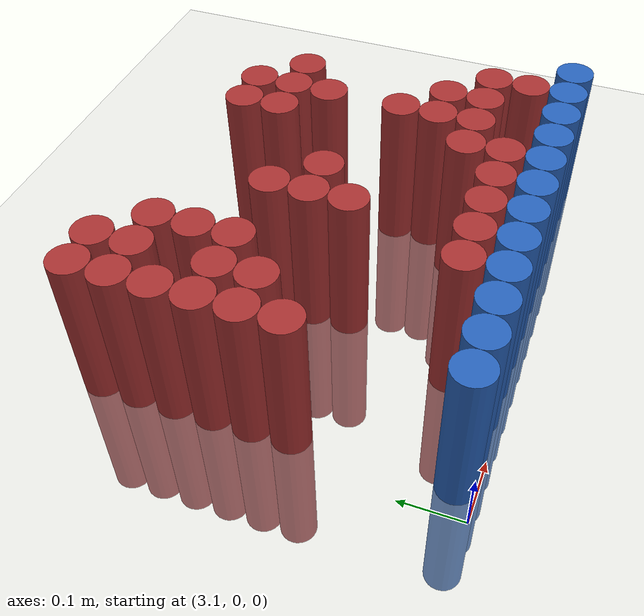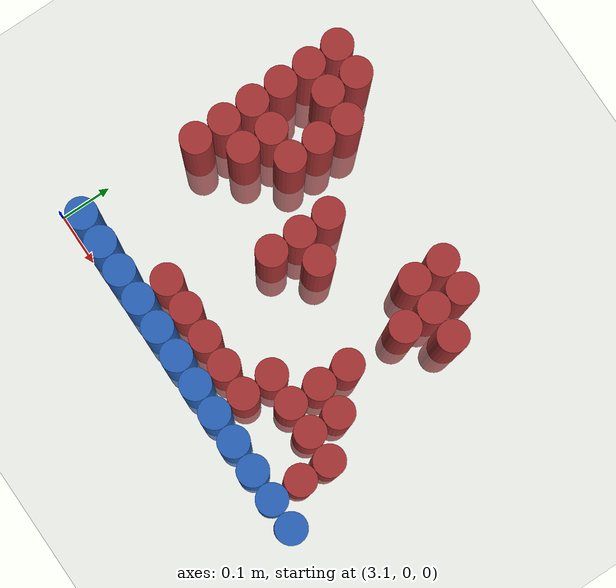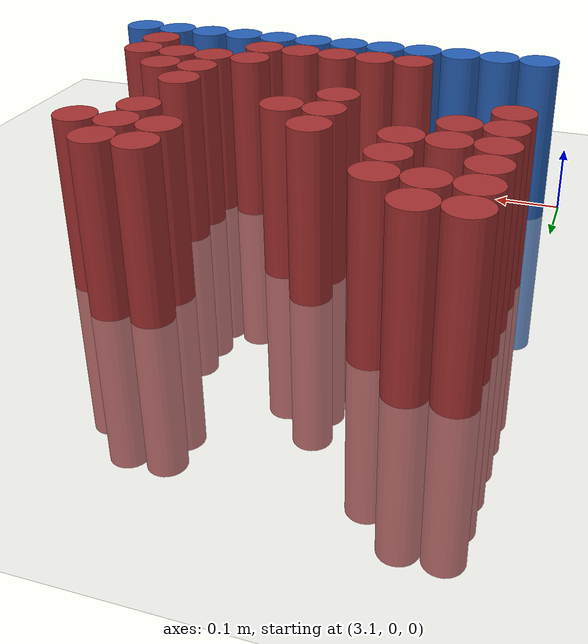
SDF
<sdf version="1.6">
 <world name="default">
  <model name="ground_plane">
   <static>1</static>
   <link name="link">
    <collision name="collision">
     <geometry><plane><normal>0 0 1</normal><size>100 100</size></plane></geometry>
     <surface><friction><ode><mu>100</mu><mu2>50</mu2></ode></friction></surface>
    </collision>
    <visual name="visual">
     <cast_shadows>0</cast_shadows>
     <geometry><plane><normal>0 0 1</normal><size>100 100</size></plane></geometry>
     <material>
      <script><uri>file://media/materials/scripts/gazebo.material</uri><name>Gazebo/Grey</name></script>
     </material>
    </visual>
   </link>
  </model>
  <model name="unit_cylinder_232">
   <static>1</static>
   <pose>3.150000 0.570000 0.000000 0.000000 0.000000 0.000000</pose>
   <link name="link">
    <inertial>
     <mass>1</mass>
     <inertia><ixx>0.145833</ixx><ixy>0</ixy><ixz>0</ixz><iyy>0.145833</iyy><iyz>0</iyz><izz>0.125</izz></inertia>
    </inertial>
    <collision name="collision">
     <geometry><cylinder><radius>0.030000</radius><length>0.5</length></cylinder></geometry>
    </collision>
    <visual name="visual">
     <geometry><cylinder><radius>0.030000</radius><length>0.5</length></cylinder></geometry>
     <material>
      <ambient>0.648000 0.192000 0.192000 1</ambient>
      <diffuse>0.648000 0.192000 0.192000 1</diffuse>
     </material>
     <material>
      <script><name>Gazebo/Grey</name><uri>file://media/materials/scripts/gazebo.material</uri></script>
     </material>
    </visual>
   </link>
  </model>
  <model name="unit_cylinder_233">
   <static>1</static>
   <pose>3.210000 0.570000 0.000000 0.000000 0.000000 0.000000</pose>
   <link name="link">
    <inertial>
     <mass>1</mass>
     <inertia><ixx>0.145833</ixx><ixy>0</ixy><ixz>0</ixz><iyy>0.145833</iyy><iyz>0</iyz><izz>0.125</izz></inertia>
    </inertial>
    <collision name="collision">
     <geometry><cylinder><radius>0.030000</radius><length>0.5</length></cylinder></geometry>
    </collision>
    <visual name="visual">
     <geometry><cylinder><radius>0.030000</radius><length>0.5</length></cylinder></geometry>
     <material>
      <ambient>0.648000 0.192000 0.192000 1</ambient>
      <diffuse>0.648000 0.192000 0.192000 1</diffuse>
     </material>
     <material>
      <script><name>Gazebo/Grey</name><uri>file://media/materials/scripts/gazebo.material</uri></script>
     </material>
    </visual>
   </link>
  </model>
  <model name="unit_cylinder_239">
   <static>1</static>
   <pose>3.150000 0.510000 0.000000 0.000000 0.000000 0.000000</pose>
   <link name="link">
    <inertial>
     <mass>1</mass>
     <inertia><ixx>0.145833</ixx><ixy>0</ixy><ixz>0</ixz><iyy>0.145833</iyy><iyz>0</iyz><izz>0.125</izz></inertia>
    </inertial>
    <collision name="collision">
     <geometry><cylinder><radius>0.030000</radius><length>0.5</length></cylinder></geometry>
    </collision>
    <visual name="visual">
     <geometry><cylinder><radius>0.030000</radius><length>0.5</length></cylinder></geometry>
     <material>
      <ambient>0.648000 0.192000 0.192000 1</ambient>
      <diffuse>0.648000 0.192000 0.192000 1</diffuse>
     </material>
     <material>
      <script><name>Gazebo/Grey</name><uri>file://media/materials/scripts/gazebo.material</uri></script>
     </material>
    </visual>
   </link>
  </model>
  <model name="unit_cylinder_240">
   <static>1</static>
   <pose>3.210000 0.510000 0.000000 0.000000 0.000000 0.000000</pose>
   <link name="link">
    <inertial>
     <mass>1</mass>
     <inertia><ixx>0.145833</ixx><ixy>0</ixy><ixz>0</ixz><iyy>0.145833</iyy><iyz>0</iyz><izz>0.125</izz></inertia>
    </inertial>
    <collision name="collision">
     <geometry><cylinder><radius>0.030000</radius><length>0.5</length></cylinder></geometry>
    </collision>
    <visual name="visual">
     <geometry><cylinder><radius>0.030000</radius><length>0.5</length></cylinder></geometry>
     <material>
      <ambient>0.648000 0.192000 0.192000 1</ambient>
      <diffuse>0.648000 0.192000 0.192000 1</diffuse>
     </material>
     <material>
      <script><name>Gazebo/Grey</name><uri>file://media/materials/scripts/gazebo.material</uri></script>
     </material>
    </visual>
   </link>
  </model>
  <model name="unit_cylinder_241">
   <static>1</static>
   <pose>3.270000 0.510000 0.000000 0.000000 0.000000 0.000000</pose>
   <link name="link">
    <inertial>
     <mass>1</mass>
     <inertia><ixx>0.145833</ixx><ixy>0</ixy><ixz>0</ixz><iyy>0.145833</iyy><iyz>0</iyz><izz>0.125</izz></inertia>
    </inertial>
    <collision name="collision">
     <geometry><cylinder><radius>0.030000</radius><length>0.5</length></cylinder></geometry>
    </collision>
    <visual name="visual">
     <geometry><cylinder><radius>0.030000</radius><length>0.5</length></cylinder></geometry>
     <material>
      <ambient>0.648000 0.192000 0.192000 1</ambient>
      <diffuse>0.648000 0.192000 0.192000 1</diffuse>
     </material>
     <material>
      <script><name>Gazebo/Grey</name><uri>file://media/materials/scripts/gazebo.material</uri></script>
     </material>
    </visual>
   </link>
  </model>
  <model name="unit_cylinder_242">
   <static>1</static>
   <pose>3.570000 0.510000 0.000000 0.000000 0.000000 0.000000</pose>
   <link name="link">
    <inertial>
     <mass>1</mass>
     <inertia><ixx>0.145833</ixx><ixy>0</ixy><ixz>0</ixz><iyy>0.145833</iyy><iyz>0</iyz><izz>0.125</izz></inertia>
    </inertial>
    <collision name="collision">
     <geometry><cylinder><radius>0.030000</radius><length>0.5</length></cylinder></geometry>
    </collision>
    <visual name="visual">
     <geometry><cylinder><radius>0.030000</radius><length>0.5</length></cylinder></geometry>
     <material>
      <ambient>0.648000 0.192000 0.192000 1</ambient>
      <diffuse>0.648000 0.192000 0.192000 1</diffuse>
     </material>
     <material>
      <script><name>Gazebo/Grey</name><uri>file://media/materials/scripts/gazebo.material</uri></script>
     </material>
    </visual>
   </link>
  </model>
  <model name="unit_cylinder_243">
   <static>1</static>
   <pose>3.630000 0.510000 0.000000 0.000000 0.000000 0.000000</pose>
   <link name="link">
    <inertial>
     <mass>1</mass>
     <inertia><ixx>0.145833</ixx><ixy>0</ixy><ixz>0</ixz><iyy>0.145833</iyy><iyz>0</iyz><izz>0.125</izz></inertia>
    </inertial>
    <collision name="collision">
     <geometry><cylinder><radius>0.030000</radius><length>0.5</length></cylinder></geometry>
    </collision>
    <visual name="visual">
     <geometry><cylinder><radius>0.030000</radius><length>0.5</length></cylinder></geometry>
     <material>
      <ambient>0.648000 0.192000 0.192000 1</ambient>
      <diffuse>0.648000 0.192000 0.192000 1</diffuse>
     </material>
     <material>
      <script><name>Gazebo/Grey</name><uri>file://media/materials/scripts/gazebo.material</uri></script>
     </material>
    </visual>
   </link>
  </model>
  <model name="unit_cylinder_247">
   <static>1</static>
   <pose>3.150000 0.450000 0.000000 0.000000 0.000000 0.000000</pose>
   <link name="link">
    <inertial>
     <mass>1</mass>
     <inertia><ixx>0.145833</ixx><ixy>0</ixy><ixz>0</ixz><iyy>0.145833</iyy><iyz>0</iyz><izz>0.125</izz></inertia>
    </inertial>
    <collision name="collision">
     <geometry><cylinder><radius>0.030000</radius><length>0.5</length></cylinder></geometry>
    </collision>
    <visual name="visual">
     <geometry><cylinder><radius>0.030000</radius><length>0.5</length></cylinder></geometry>
     <material>
      <ambient>0.648000 0.192000 0.192000 1</ambient>
      <diffuse>0.648000 0.192000 0.192000 1</diffuse>
     </material>
     <material>
      <script><name>Gazebo/Grey</name><uri>file://media/materials/scripts/gazebo.material</uri></script>
     </material>
    </visual>
   </link>
  </model>
  <model name="unit_cylinder_248">
   <static>1</static>
   <pose>3.270000 0.450000 0.000000 0.000000 0.000000 0.000000</pose>
   <link name="link">
    <inertial>
     <mass>1</mass>
     <inertia><ixx>0.145833</ixx><ixy>0</ixy><ixz>0</ixz><iyy>0.145833</iyy><iyz>0</iyz><izz>0.125</izz></inertia>
    </inertial>
    <collision name="collision">
     <geometry><cylinder><radius>0.030000</radius><length>0.5</length></cylinder></geometry>
    </collision>
    <visual name="visual">
     <geometry><cylinder><radius>0.030000</radius><length>0.5</length></cylinder></geometry>
     <material>
      <ambient>0.648000 0.192000 0.192000 1</ambient>
      <diffuse>0.648000 0.192000 0.192000 1</diffuse>
     </material>
     <material>
      <script><name>Gazebo/Grey</name><uri>file://media/materials/scripts/gazebo.material</uri></script>
     </material>
    </visual>
   </link>
  </model>
  <model name="unit_cylinder_249">
   <static>1</static>
   <pose>3.570000 0.450000 0.000000 0.000000 0.000000 0.000000</pose>
   <link name="link">
    <inertial>
     <mass>1</mass>
     <inertia><ixx>0.145833</ixx><ixy>0</ixy><ixz>0</ixz><iyy>0.145833</iyy><iyz>0</iyz><izz>0.125</izz></inertia>
    </inertial>
    <collision name="collision">
     <geometry><cylinder><radius>0.030000</radius><length>0.5</length></cylinder></geometry>
    </collision>
    <visual name="visual">
     <geometry><cylinder><radius>0.030000</radius><length>0.5</length></cylinder></geometry>
     <material>
      <ambient>0.648000 0.192000 0.192000 1</ambient>
      <diffuse>0.648000 0.192000 0.192000 1</diffuse>
     </material>
     <material>
      <script><name>Gazebo/Grey</name><uri>file://media/materials/scripts/gazebo.material</uri></script>
     </material>
    </visual>
   </link>
  </model>
  <model name="unit_cylinder_250">
   <static>1</static>
   <pose>3.630000 0.450000 0.000000 0.000000 0.000000 0.000000</pose>
   <link name="link">
    <inertial>
     <mass>1</mass>
     <inertia><ixx>0.145833</ixx><ixy>0</ixy><ixz>0</ixz><iyy>0.145833</iyy><iyz>0</iyz><izz>0.125</izz></inertia>
    </inertial>
    <collision name="collision">
     <geometry><cylinder><radius>0.030000</radius><length>0.5</length></cylinder></geometry>
    </collision>
    <visual name="visual">
     <geometry><cylinder><radius>0.030000</radius><length>0.5</length></cylinder></geometry>
     <material>
      <ambient>0.648000 0.192000 0.192000 1</ambient>
      <diffuse>0.648000 0.192000 0.192000 1</diffuse>
     </material>
     <material>
      <script><name>Gazebo/Grey</name><uri>file://media/materials/scripts/gazebo.material</uri></script>
     </material>
    </visual>
   </link>
  </model>
  <model name="unit_cylinder_251">
   <static>1</static>
   <pose>3.690000 0.450000 0.000000 0.000000 0.000000 0.000000</pose>
   <link name="link">
    <inertial>
     <mass>1</mass>
     <inertia><ixx>0.145833</ixx><ixy>0</ixy><ixz>0</ixz><iyy>0.145833</iyy><iyz>0</iyz><izz>0.125</izz></inertia>
    </inertial>
    <collision name="collision">
     <geometry><cylinder><radius>0.030000</radius><length>0.5</length></cylinder></geometry>
    </collision>
    <visual name="visual">
     <geometry><cylinder><radius>0.030000</radius><length>0.5</length></cylinder></geometry>
     <material>
      <ambient>0.648000 0.192000 0.192000 1</ambient>
      <diffuse>0.648000 0.192000 0.192000 1</diffuse>
     </material>
     <material>
      <script><name>Gazebo/Grey</name><uri>file://media/materials/scripts/gazebo.material</uri></script>
     </material>
    </visual>
   </link>
  </model>
  <model name="unit_cylinder_258">
   <static>1</static>
   <pose>3.150000 0.390000 0.000000 0.000000 0.000000 0.000000</pose>
   <link name="link">
    <inertial>
     <mass>1</mass>
     <inertia><ixx>0.145833</ixx><ixy>0</ixy><ixz>0</ixz><iyy>0.145833</iyy><iyz>0</iyz><izz>0.125</izz></inertia>
    </inertial>
    <collision name="collision">
     <geometry><cylinder><radius>0.030000</radius><length>0.5</length></cylinder></geometry>
    </collision>
    <visual name="visual">
     <geometry><cylinder><radius>0.030000</radius><length>0.5</length></cylinder></geometry>
     <material>
      <ambient>0.648000 0.192000 0.192000 1</ambient>
      <diffuse>0.648000 0.192000 0.192000 1</diffuse>
     </material>
     <material>
      <script><name>Gazebo/Grey</name><uri>file://media/materials/scripts/gazebo.material</uri></script>
     </material>
    </visual>
   </link>
  </model>
  <model name="unit_cylinder_259">
   <static>1</static>
   <pose>3.210000 0.390000 0.000000 0.000000 0.000000 0.000000</pose>
   <link name="link">
    <inertial>
     <mass>1</mass>
     <inertia><ixx>0.145833</ixx><ixy>0</ixy><ixz>0</ixz><iyy>0.145833</iyy><iyz>0</iyz><izz>0.125</izz></inertia>
    </inertial>
    <collision name="collision">
     <geometry><cylinder><radius>0.030000</radius><length>0.5</length></cylinder></geometry>
    </collision>
    <visual name="visual">
     <geometry><cylinder><radius>0.030000</radius><length>0.5</length></cylinder></geometry>
     <material>
      <ambient>0.648000 0.192000 0.192000 1</ambient>
      <diffuse>0.648000 0.192000 0.192000 1</diffuse>
     </material>
     <material>
      <script><name>Gazebo/Grey</name><uri>file://media/materials/scripts/gazebo.material</uri></script>
     </material>
    </visual>
   </link>
  </model>
  <model name="unit_cylinder_260">
   <static>1</static>
   <pose>3.270000 0.390000 0.000000 0.000000 0.000000 0.000000</pose>
   <link name="link">
    <inertial>
     <mass>1</mass>
     <inertia><ixx>0.145833</ixx><ixy>0</ixy><ixz>0</ixz><iyy>0.145833</iyy><iyz>0</iyz><izz>0.125</izz></inertia>
    </inertial>
    <collision name="collision">
     <geometry><cylinder><radius>0.030000</radius><length>0.5</length></cylinder></geometry>
    </collision>
    <visual name="visual">
     <geometry><cylinder><radius>0.030000</radius><length>0.5</length></cylinder></geometry>
     <material>
      <ambient>0.648000 0.192000 0.192000 1</ambient>
      <diffuse>0.648000 0.192000 0.192000 1</diffuse>
     </material>
     <material>
      <script><name>Gazebo/Grey</name><uri>file://media/materials/scripts/gazebo.material</uri></script>
     </material>
    </visual>
   </link>
  </model>
  <model name="unit_cylinder_261">
   <static>1</static>
   <pose>3.390000 0.390000 0.000000 0.000000 0.000000 0.000000</pose>
   <link name="link">
    <inertial>
     <mass>1</mass>
     <inertia><ixx>0.145833</ixx><ixy>0</ixy><ixz>0</ixz><iyy>0.145833</iyy><iyz>0</iyz><izz>0.125</izz></inertia>
    </inertial>
    <collision name="collision">
     <geometry><cylinder><radius>0.030000</radius><length>0.5</length></cylinder></geometry>
    </collision>
    <visual name="visual">
     <geometry><cylinder><radius>0.030000</radius><length>0.5</length></cylinder></geometry>
     <material>
      <ambient>0.648000 0.192000 0.192000 1</ambient>
      <diffuse>0.648000 0.192000 0.192000 1</diffuse>
     </material>
     <material>
      <script><name>Gazebo/Grey</name><uri>file://media/materials/scripts/gazebo.material</uri></script>
     </material>
    </visual>
   </link>
  </model>
  <model name="unit_cylinder_262">
   <static>1</static>
   <pose>3.630000 0.390000 0.000000 0.000000 0.000000 0.000000</pose>
   <link name="link">
    <inertial>
     <mass>1</mass>
     <inertia><ixx>0.145833</ixx><ixy>0</ixy><ixz>0</ixz><iyy>0.145833</iyy><iyz>0</iyz><izz>0.125</izz></inertia>
    </inertial>
    <collision name="collision">
     <geometry><cylinder><radius>0.030000</radius><length>0.5</length></cylinder></geometry>
    </collision>
    <visual name="visual">
     <geometry><cylinder><radius>0.030000</radius><length>0.5</length></cylinder></geometry>
     <material>
      <ambient>0.648000 0.192000 0.192000 1</ambient>
      <diffuse>0.648000 0.192000 0.192000 1</diffuse>
     </material>
     <material>
      <script><name>Gazebo/Grey</name><uri>file://media/materials/scripts/gazebo.material</uri></script>
     </material>
    </visual>
   </link>
  </model>
  <model name="unit_cylinder_270">
   <static>1</static>
   <pose>3.150000 0.330000 0.000000 0.000000 0.000000 0.000000</pose>
   <link name="link">
    <inertial>
     <mass>1</mass>
     <inertia><ixx>0.145833</ixx><ixy>0</ixy><ixz>0</ixz><iyy>0.145833</iyy><iyz>0</iyz><izz>0.125</izz></inertia>
    </inertial>
    <collision name="collision">
     <geometry><cylinder><radius>0.030000</radius><length>0.5</length></cylinder></geometry>
    </collision>
    <visual name="visual">
     <geometry><cylinder><radius>0.030000</radius><length>0.5</length></cylinder></geometry>
     <material>
      <ambient>0.648000 0.192000 0.192000 1</ambient>
      <diffuse>0.648000 0.192000 0.192000 1</diffuse>
     </material>
     <material>
      <script><name>Gazebo/Grey</name><uri>file://media/materials/scripts/gazebo.material</uri></script>
     </material>
    </visual>
   </link>
  </model>
  <model name="unit_cylinder_271">
   <static>1</static>
   <pose>3.210000 0.330000 0.000000 0.000000 0.000000 0.000000</pose>
   <link name="link">
    <inertial>
     <mass>1</mass>
     <inertia><ixx>0.145833</ixx><ixy>0</ixy><ixz>0</ixz><iyy>0.145833</iyy><iyz>0</iyz><izz>0.125</izz></inertia>
    </inertial>
    <collision name="collision">
     <geometry><cylinder><radius>0.030000</radius><length>0.5</length></cylinder></geometry>
    </collision>
    <visual name="visual">
     <geometry><cylinder><radius>0.030000</radius><length>0.5</length></cylinder></geometry>
     <material>
      <ambient>0.648000 0.192000 0.192000 1</ambient>
      <diffuse>0.648000 0.192000 0.192000 1</diffuse>
     </material>
     <material>
      <script><name>Gazebo/Grey</name><uri>file://media/materials/scripts/gazebo.material</uri></script>
     </material>
    </visual>
   </link>
  </model>
  <model name="unit_cylinder_272">
   <static>1</static>
   <pose>3.390000 0.330000 0.000000 0.000000 0.000000 0.000000</pose>
   <link name="link">
    <inertial>
     <mass>1</mass>
     <inertia><ixx>0.145833</ixx><ixy>0</ixy><ixz>0</ixz><iyy>0.145833</iyy><iyz>0</iyz><izz>0.125</izz></inertia>
    </inertial>
    <collision name="collision">
     <geometry><cylinder><radius>0.030000</radius><length>0.5</length></cylinder></geometry>
    </collision>
    <visual name="visual">
     <geometry><cylinder><radius>0.030000</radius><length>0.5</length></cylinder></geometry>
     <material>
      <ambient>0.648000 0.192000 0.192000 1</ambient>
      <diffuse>0.648000 0.192000 0.192000 1</diffuse>
     </material>
     <material>
      <script><name>Gazebo/Grey</name><uri>file://media/materials/scripts/gazebo.material</uri></script>
     </material>
    </visual>
   </link>
  </model>
  <model name="unit_cylinder_273">
   <static>1</static>
   <pose>3.450000 0.330000 0.000000 0.000000 0.000000 0.000000</pose>
   <link name="link">
    <inertial>
     <mass>1</mass>
     <inertia><ixx>0.145833</ixx><ixy>0</ixy><ixz>0</ixz><iyy>0.145833</iyy><iyz>0</iyz><izz>0.125</izz></inertia>
    </inertial>
    <collision name="collision">
     <geometry><cylinder><radius>0.030000</radius><length>0.5</length></cylinder></geometry>
    </collision>
    <visual name="visual">
     <geometry><cylinder><radius>0.030000</radius><length>0.5</length></cylinder></geometry>
     <material>
      <ambient>0.648000 0.192000 0.192000 1</ambient>
      <diffuse>0.648000 0.192000 0.192000 1</diffuse>
     </material>
     <material>
      <script><name>Gazebo/Grey</name><uri>file://media/materials/scripts/gazebo.material</uri></script>
     </material>
    </visual>
   </link>
  </model>
  <model name="unit_cylinder_278">
   <static>1</static>
   <pose>3.150000 0.270000 0.000000 0.000000 0.000000 0.000000</pose>
   <link name="link">
    <inertial>
     <mass>1</mass>
     <inertia><ixx>0.145833</ixx><ixy>0</ixy><ixz>0</ixz><iyy>0.145833</iyy><iyz>0</iyz><izz>0.125</izz></inertia>
    </inertial>
    <collision name="collision">
     <geometry><cylinder><radius>0.030000</radius><length>0.5</length></cylinder></geometry>
    </collision>
    <visual name="visual">
     <geometry><cylinder><radius>0.030000</radius><length>0.5</length></cylinder></geometry>
     <material>
      <ambient>0.648000 0.192000 0.192000 1</ambient>
      <diffuse>0.648000 0.192000 0.192000 1</diffuse>
     </material>
     <material>
      <script><name>Gazebo/Grey</name><uri>file://media/materials/scripts/gazebo.material</uri></script>
     </material>
    </visual>
   </link>
  </model>
  <model name="unit_cylinder_279">
   <static>1</static>
   <pose>3.390000 0.270000 0.000000 0.000000 0.000000 0.000000</pose>
   <link name="link">
    <inertial>
     <mass>1</mass>
     <inertia><ixx>0.145833</ixx><ixy>0</ixy><ixz>0</ixz><iyy>0.145833</iyy><iyz>0</iyz><izz>0.125</izz></inertia>
    </inertial>
    <collision name="collision">
     <geometry><cylinder><radius>0.030000</radius><length>0.5</length></cylinder></geometry>
    </collision>
    <visual name="visual">
     <geometry><cylinder><radius>0.030000</radius><length>0.5</length></cylinder></geometry>
     <material>
      <ambient>0.648000 0.192000 0.192000 1</ambient>
      <diffuse>0.648000 0.192000 0.192000 1</diffuse>
     </material>
     <material>
      <script><name>Gazebo/Grey</name><uri>file://media/materials/scripts/gazebo.material</uri></script>
     </material>
    </visual>
   </link>
  </model>
  <model name="unit_cylinder_280">
   <static>1</static>
   <pose>3.630000 0.270000 0.000000 0.000000 0.000000 0.000000</pose>
   <link name="link">
    <inertial>
     <mass>1</mass>
     <inertia><ixx>0.145833</ixx><ixy>0</ixy><ixz>0</ixz><iyy>0.145833</iyy><iyz>0</iyz><izz>0.125</izz></inertia>
    </inertial>
    <collision name="collision">
     <geometry><cylinder><radius>0.030000</radius><length>0.5</length></cylinder></geometry>
    </collision>
    <visual name="visual">
     <geometry><cylinder><radius>0.030000</radius><length>0.5</length></cylinder></geometry>
     <material>
      <ambient>0.648000 0.192000 0.192000 1</ambient>
      <diffuse>0.648000 0.192000 0.192000 1</diffuse>
     </material>
     <material>
      <script><name>Gazebo/Grey</name><uri>file://media/materials/scripts/gazebo.material</uri></script>
     </material>
    </visual>
   </link>
  </model>
  <model name="unit_cylinder_282">
   <static>1</static>
   <pose>3.630000 0.210000 0.000000 0.000000 0.000000 0.000000</pose>
   <link name="link">
    <inertial>
     <mass>1</mass>
     <inertia><ixx>0.145833</ixx><ixy>0</ixy><ixz>0</ixz><iyy>0.145833</iyy><iyz>0</iyz><izz>0.125</izz></inertia>
    </inertial>
    <collision name="collision">
     <geometry><cylinder><radius>0.030000</radius><length>0.5</length></cylinder></geometry>
    </collision>
    <visual name="visual">
     <geometry><cylinder><radius>0.030000</radius><length>0.5</length></cylinder></geometry>
     <material>
      <ambient>0.648000 0.192000 0.192000 1</ambient>
      <diffuse>0.648000 0.192000 0.192000 1</diffuse>
     </material>
     <material>
      <script><name>Gazebo/Grey</name><uri>file://media/materials/scripts/gazebo.material</uri></script>
     </material>
    </visual>
   </link>
  </model>
  <model name="unit_cylinder_283">
   <static>1</static>
   <pose>3.690000 0.210000 0.000000 0.000000 0.000000 0.000000</pose>
   <link name="link">
    <inertial>
     <mass>1</mass>
     <inertia><ixx>0.145833</ixx><ixy>0</ixy><ixz>0</ixz><iyy>0.145833</iyy><iyz>0</iyz><izz>0.125</izz></inertia>
    </inertial>
    <collision name="collision">
     <geometry><cylinder><radius>0.030000</radius><length>0.5</length></cylinder></geometry>
    </collision>
    <visual name="visual">
     <geometry><cylinder><radius>0.030000</radius><length>0.5</length></cylinder></geometry>
     <material>
      <ambient>0.648000 0.192000 0.192000 1</ambient>
      <diffuse>0.648000 0.192000 0.192000 1</diffuse>
     </material>
     <material>
      <script><name>Gazebo/Grey</name><uri>file://media/materials/scripts/gazebo.material</uri></script>
     </material>
    </visual>
   </link>
  </model>
  <model name="unit_cylinder_286">
   <static>1</static>
   <pose>3.570000 0.150000 0.000000 0.000000 0.000000 0.000000</pose>
   <link name="link">
    <inertial>
     <mass>1</mass>
     <inertia><ixx>0.145833</ixx><ixy>0</ixy><ixz>0</ixz><iyy>0.145833</iyy><iyz>0</iyz><izz>0.125</izz></inertia>
    </inertial>
    <collision name="collision">
     <geometry><cylinder><radius>0.030000</radius><length>0.5</length></cylinder></geometry>
    </collision>
    <visual name="visual">
     <geometry><cylinder><radius>0.030000</radius><length>0.5</length></cylinder></geometry>
     <material>
      <ambient>0.648000 0.192000 0.192000 1</ambient>
      <diffuse>0.648000 0.192000 0.192000 1</diffuse>
     </material>
     <material>
      <script><name>Gazebo/Grey</name><uri>file://media/materials/scripts/gazebo.material</uri></script>
     </material>
    </visual>
   </link>
  </model>
  <model name="unit_cylinder_287">
   <static>1</static>
   <pose>3.630000 0.150000 0.000000 0.000000 0.000000 0.000000</pose>
   <link name="link">
    <inertial>
     <mass>1</mass>
     <inertia><ixx>0.145833</ixx><ixy>0</ixy><ixz>0</ixz><iyy>0.145833</iyy><iyz>0</iyz><izz>0.125</izz></inertia>
    </inertial>
    <collision name="collision">
     <geometry><cylinder><radius>0.030000</radius><length>0.5</length></cylinder></geometry>
    </collision>
    <visual name="visual">
     <geometry><cylinder><radius>0.030000</radius><length>0.5</length></cylinder></geometry>
     <material>
      <ambient>0.648000 0.192000 0.192000 1</ambient>
      <diffuse>0.648000 0.192000 0.192000 1</diffuse>
     </material>
     <material>
      <script><name>Gazebo/Grey</name><uri>file://media/materials/scripts/gazebo.material</uri></script>
     </material>
    </visual>
   </link>
  </model>
  <model name="unit_cylinder_288">
   <static>1</static>
   <pose>3.690000 0.150000 0.000000 0.000000 0.000000 0.000000</pose>
   <link name="link">
    <inertial>
     <mass>1</mass>
     <inertia><ixx>0.145833</ixx><ixy>0</ixy><ixz>0</ixz><iyy>0.145833</iyy><iyz>0</iyz><izz>0.125</izz></inertia>
    </inertial>
    <collision name="collision">
     <geometry><cylinder><radius>0.030000</radius><length>0.5</length></cylinder></geometry>
    </collision>
    <visual name="visual">
     <geometry><cylinder><radius>0.030000</radius><length>0.5</length></cylinder></geometry>
     <material>
      <ambient>0.648000 0.192000 0.192000 1</ambient>
      <diffuse>0.648000 0.192000 0.192000 1</diffuse>
     </material>
     <material>
      <script><name>Gazebo/Grey</name><uri>file://media/materials/scripts/gazebo.material</uri></script>
     </material>
    </visual>
   </link>
  </model>
  <model name="unit_cylinder_289">
   <static>1</static>
   <pose>3.750000 0.150000 0.000000 0.000000 0.000000 0.000000</pose>
   <link name="link">
    <inertial>
     <mass>1</mass>
     <inertia><ixx>0.145833</ixx><ixy>0</ixy><ixz>0</ixz><iyy>0.145833</iyy><iyz>0</iyz><izz>0.125</izz></inertia>
    </inertial>
    <collision name="collision">
     <geometry><cylinder><radius>0.030000</radius><length>0.5</length></cylinder></geometry>
    </collision>
    <visual name="visual">
     <geometry><cylinder><radius>0.030000</radius><length>0.5</length></cylinder></geometry>
     <material>
      <ambient>0.648000 0.192000 0.192000 1</ambient>
      <diffuse>0.648000 0.192000 0.192000 1</diffuse>
     </material>
     <material>
      <script><name>Gazebo/Grey</name><uri>file://media/materials/scripts/gazebo.material</uri></script>
     </material>
    </visual>
   </link>
  </model>
  <model name="unit_cylinder_296">
   <static>1</static>
   <pose>3.330000 0.090000 0.000000 0.000000 0.000000 0.000000</pose>
   <link name="link">
    <inertial>
     <mass>1</mass>
     <inertia><ixx>0.145833</ixx><ixy>0</ixy><ixz>0</ixz><iyy>0.145833</iyy><iyz>0</iyz><izz>0.125</izz></inertia>
    </inertial>
    <collision name="collision">
     <geometry><cylinder><radius>0.030000</radius><length>0.5</length></cylinder></geometry>
    </collision>
    <visual name="visual">
     <geometry><cylinder><radius>0.030000</radius><length>0.5</length></cylinder></geometry>
     <material>
      <ambient>0.648000 0.192000 0.192000 1</ambient>
      <diffuse>0.648000 0.192000 0.192000 1</diffuse>
     </material>
     <material>
      <script><name>Gazebo/Grey</name><uri>file://media/materials/scripts/gazebo.material</uri></script>
     </material>
    </visual>
   </link>
  </model>
  <model name="unit_cylinder_297">
   <static>1</static>
   <pose>3.390000 0.090000 0.000000 0.000000 0.000000 0.000000</pose>
   <link name="link">
    <inertial>
     <mass>1</mass>
     <inertia><ixx>0.145833</ixx><ixy>0</ixy><ixz>0</ixz><iyy>0.145833</iyy><iyz>0</iyz><izz>0.125</izz></inertia>
    </inertial>
    <collision name="collision">
     <geometry><cylinder><radius>0.030000</radius><length>0.5</length></cylinder></geometry>
    </collision>
    <visual name="visual">
     <geometry><cylinder><radius>0.030000</radius><length>0.5</length></cylinder></geometry>
     <material>
      <ambient>0.648000 0.192000 0.192000 1</ambient>
      <diffuse>0.648000 0.192000 0.192000 1</diffuse>
     </material>
     <material>
      <script><name>Gazebo/Grey</name><uri>file://media/materials/scripts/gazebo.material</uri></script>
     </material>
    </visual>
   </link>
  </model>
  <model name="unit_cylinder_298">
   <static>1</static>
   <pose>3.450000 0.090000 0.000000 0.000000 0.000000 0.000000</pose>
   <link name="link">
    <inertial>
     <mass>1</mass>
     <inertia><ixx>0.145833</ixx><ixy>0</ixy><ixz>0</ixz><iyy>0.145833</iyy><iyz>0</iyz><izz>0.125</izz></inertia>
    </inertial>
    <collision name="collision">
     <geometry><cylinder><radius>0.030000</radius><length>0.5</length></cylinder></geometry>
    </collision>
    <visual name="visual">
     <geometry><cylinder><radius>0.030000</radius><length>0.5</length></cylinder></geometry>
     <material>
      <ambient>0.648000 0.192000 0.192000 1</ambient>
      <diffuse>0.648000 0.192000 0.192000 1</diffuse>
     </material>
     <material>
      <script><name>Gazebo/Grey</name><uri>file://media/materials/scripts/gazebo.material</uri></script>
     </material>
    </visual>
   </link>
  </model>
  <model name="unit_cylinder_299">
   <static>1</static>
   <pose>3.510000 0.090000 0.000000 0.000000 0.000000 0.000000</pose>
   <link name="link">
    <inertial>
     <mass>1</mass>
     <inertia><ixx>0.145833</ixx><ixy>0</ixy><ixz>0</ixz><iyy>0.145833</iyy><iyz>0</iyz><izz>0.125</izz></inertia>
    </inertial>
    <collision name="collision">
     <geometry><cylinder><radius>0.030000</radius><length>0.5</length></cylinder></geometry>
    </collision>
    <visual name="visual">
     <geometry><cylinder><radius>0.030000</radius><length>0.5</length></cylinder></geometry>
     <material>
      <ambient>0.648000 0.192000 0.192000 1</ambient>
      <diffuse>0.648000 0.192000 0.192000 1</diffuse>
     </material>
     <material>
      <script><name>Gazebo/Grey</name><uri>file://media/materials/scripts/gazebo.material</uri></script>
     </material>
    </visual>
   </link>
  </model>
  <model name="unit_cylinder_300">
   <static>1</static>
   <pose>3.570000 0.090000 0.000000 0.000000 0.000000 0.000000</pose>
   <link name="link">
    <inertial>
     <mass>1</mass>
     <inertia><ixx>0.145833</ixx><ixy>0</ixy><ixz>0</ixz><iyy>0.145833</iyy><iyz>0</iyz><izz>0.125</izz></inertia>
    </inertial>
    <collision name="collision">
     <geometry><cylinder><radius>0.030000</radius><length>0.5</length></cylinder></geometry>
    </collision>
    <visual name="visual">
     <geometry><cylinder><radius>0.030000</radius><length>0.5</length></cylinder></geometry>
     <material>
      <ambient>0.648000 0.192000 0.192000 1</ambient>
      <diffuse>0.648000 0.192000 0.192000 1</diffuse>
     </material>
     <material>
      <script><name>Gazebo/Grey</name><uri>file://media/materials/scripts/gazebo.material</uri></script>
     </material>
    </visual>
   </link>
  </model>
  <model name="unit_cylinder_301">
   <static>1</static>
   <pose>3.750000 0.090000 0.000000 0.000000 0.000000 0.000000</pose>
   <link name="link">
    <inertial>
     <mass>1</mass>
     <inertia><ixx>0.145833</ixx><ixy>0</ixy><ixz>0</ixz><iyy>0.145833</iyy><iyz>0</iyz><izz>0.125</izz></inertia>
    </inertial>
    <collision name="collision">
     <geometry><cylinder><radius>0.030000</radius><length>0.5</length></cylinder></geometry>
    </collision>
    <visual name="visual">
     <geometry><cylinder><radius>0.030000</radius><length>0.5</length></cylinder></geometry>
     <material>
      <ambient>0.648000 0.192000 0.192000 1</ambient>
      <diffuse>0.648000 0.192000 0.192000 1</diffuse>
     </material>
     <material>
      <script><name>Gazebo/Grey</name><uri>file://media/materials/scripts/gazebo.material</uri></script>
     </material>
    </visual>
   </link>
  </model>
  <model name="unit_cylinder_320">
   <static>1</static>
   <pose>3.150000 0.030000 0.000000 0.000000 0.000000 0.000000</pose>
   <link name="link">
    <inertial>
     <mass>1</mass>
     <inertia><ixx>0.145833</ixx><ixy>0</ixy><ixz>0</ixz><iyy>0.145833</iyy><iyz>0</iyz><izz>0.125</izz></inertia>
    </inertial>
    <collision name="collision">
     <geometry><cylinder><radius>0.030000</radius><length>0.5</length></cylinder></geometry>
    </collision>
    <visual name="visual">
     <geometry><cylinder><radius>0.030000</radius><length>0.5</length></cylinder></geometry>
     <material>
      <ambient>0.152000 0.379000 0.720000 1</ambient>
      <diffuse>0.152000 0.379000 0.720000 1</diffuse>
     </material>
     <material>
      <script><name>Gazebo/Grey</name><uri>file://media/materials/scripts/gazebo.material</uri></script>
     </material>
    </visual>
   </link>
  </model>
  <model name="unit_cylinder_321">
   <static>1</static>
   <pose>3.210000 0.030000 0.000000 0.000000 0.000000 0.000000</pose>
   <link name="link">
    <inertial>
     <mass>1</mass>
     <inertia><ixx>0.145833</ixx><ixy>0</ixy><ixz>0</ixz><iyy>0.145833</iyy><iyz>0</iyz><izz>0.125</izz></inertia>
    </inertial>
    <collision name="collision">
     <geometry><cylinder><radius>0.030000</radius><length>0.5</length></cylinder></geometry>
    </collision>
    <visual name="visual">
     <geometry><cylinder><radius>0.030000</radius><length>0.5</length></cylinder></geometry>
     <material>
      <ambient>0.152000 0.379000 0.720000 1</ambient>
      <diffuse>0.152000 0.379000 0.720000 1</diffuse>
     </material>
     <material>
      <script><name>Gazebo/Grey</name><uri>file://media/materials/scripts/gazebo.material</uri></script>
     </material>
    </visual>
   </link>
  </model>
  <model name="unit_cylinder_322">
   <static>1</static>
   <pose>3.270000 0.030000 0.000000 0.000000 0.000000 0.000000</pose>
   <link name="link">
    <inertial>
     <mass>1</mass>
     <inertia><ixx>0.145833</ixx><ixy>0</ixy><ixz>0</ixz><iyy>0.145833</iyy><iyz>0</iyz><izz>0.125</izz></inertia>
    </inertial>
    <collision name="collision">
     <geometry><cylinder><radius>0.030000</radius><length>0.5</length></cylinder></geometry>
    </collision>
    <visual name="visual">
     <geometry><cylinder><radius>0.030000</radius><length>0.5</length></cylinder></geometry>
     <material>
      <ambient>0.152000 0.379000 0.720000 1</ambient>
      <diffuse>0.152000 0.379000 0.720000 1</diffuse>
     </material>
     <material>
      <script><name>Gazebo/Grey</name><uri>file://media/materials/scripts/gazebo.material</uri></script>
     </material>
    </visual>
   </link>
  </model>
  <model name="unit_cylinder_323">
   <static>1</static>
   <pose>3.330000 0.030000 0.000000 0.000000 0.000000 0.000000</pose>
   <link name="link">
    <inertial>
     <mass>1</mass>
     <inertia><ixx>0.145833</ixx><ixy>0</ixy><ixz>0</ixz><iyy>0.145833</iyy><iyz>0</iyz><izz>0.125</izz></inertia>
    </inertial>
    <collision name="collision">
     <geometry><cylinder><radius>0.030000</radius><length>0.5</length></cylinder></geometry>
    </collision>
    <visual name="visual">
     <geometry><cylinder><radius>0.030000</radius><length>0.5</length></cylinder></geometry>
     <material>
      <ambient>0.152000 0.379000 0.720000 1</ambient>
      <diffuse>0.152000 0.379000 0.720000 1</diffuse>
     </material>
     <material>
      <script><name>Gazebo/Grey</name><uri>file://media/materials/scripts/gazebo.material</uri></script>
     </material>
    </visual>
   </link>
  </model>
  <model name="unit_cylinder_324">
   <static>1</static>
   <pose>3.390000 0.030000 0.000000 0.000000 0.000000 0.000000</pose>
   <link name="link">
    <inertial>
     <mass>1</mass>
     <inertia><ixx>0.145833</ixx><ixy>0</ixy><ixz>0</ixz><iyy>0.145833</iyy><iyz>0</iyz><izz>0.125</izz></inertia>
    </inertial>
    <collision name="collision">
     <geometry><cylinder><radius>0.030000</radius><length>0.5</length></cylinder></geometry>
    </collision>
    <visual name="visual">
     <geometry><cylinder><radius>0.030000</radius><length>0.5</length></cylinder></geometry>
     <material>
      <ambient>0.152000 0.379000 0.720000 1</ambient>
      <diffuse>0.152000 0.379000 0.720000 1</diffuse>
     </material>
     <material>
      <script><name>Gazebo/Grey</name><uri>file://media/materials/scripts/gazebo.material</uri></script>
     </material>
    </visual>
   </link>
  </model>
  <model name="unit_cylinder_325">
   <static>1</static>
   <pose>3.450000 0.030000 0.000000 0.000000 0.000000 0.000000</pose>
   <link name="link">
    <inertial>
     <mass>1</mass>
     <inertia><ixx>0.145833</ixx><ixy>0</ixy><ixz>0</ixz><iyy>0.145833</iyy><iyz>0</iyz><izz>0.125</izz></inertia>
    </inertial>
    <collision name="collision">
     <geometry><cylinder><radius>0.030000</radius><length>0.5</length></cylinder></geometry>
    </collision>
    <visual name="visual">
     <geometry><cylinder><radius>0.030000</radius><length>0.5</length></cylinder></geometry>
     <material>
      <ambient>0.152000 0.379000 0.720000 1</ambient>
      <diffuse>0.152000 0.379000 0.720000 1</diffuse>
     </material>
     <material>
      <script><name>Gazebo/Grey</name><uri>file://media/materials/scripts/gazebo.material</uri></script>
     </material>
    </visual>
   </link>
  </model>
  <model name="unit_cylinder_326">
   <static>1</static>
   <pose>3.510000 0.030000 0.000000 0.000000 0.000000 0.000000</pose>
   <link name="link">
    <inertial>
     <mass>1</mass>
     <inertia><ixx>0.145833</ixx><ixy>0</ixy><ixz>0</ixz><iyy>0.145833</iyy><iyz>0</iyz><izz>0.125</izz></inertia>
    </inertial>
    <collision name="collision">
     <geometry><cylinder><radius>0.030000</radius><length>0.5</length></cylinder></geometry>
    </collision>
    <visual name="visual">
     <geometry><cylinder><radius>0.030000</radius><length>0.5</length></cylinder></geometry>
     <material>
      <ambient>0.152000 0.379000 0.720000 1</ambient>
      <diffuse>0.152000 0.379000 0.720000 1</diffuse>
     </material>
     <material>
      <script><name>Gazebo/Grey</name><uri>file://media/materials/scripts/gazebo.material</uri></script>
     </material>
    </visual>
   </link>
  </model>
  <model name="unit_cylinder_327">
   <static>1</static>
   <pose>3.570000 0.030000 0.000000 0.000000 0.000000 0.000000</pose>
   <link name="link">
    <inertial>
     <mass>1</mass>
     <inertia><ixx>0.145833</ixx><ixy>0</ixy><ixz>0</ixz><iyy>0.145833</iyy><iyz>0</iyz><izz>0.125</izz></inertia>
    </inertial>
    <collision name="collision">
     <geometry><cylinder><radius>0.030000</radius><length>0.5</length></cylinder></geometry>
    </collision>
    <visual name="visual">
     <geometry><cylinder><radius>0.030000</radius><length>0.5</length></cylinder></geometry>
     <material>
      <ambient>0.152000 0.379000 0.720000 1</ambient>
      <diffuse>0.152000 0.379000 0.720000 1</diffuse>
     </material>
     <material>
      <script><name>Gazebo/Grey</name><uri>file://media/materials/scripts/gazebo.material</uri></script>
     </material>
    </visual>
   </link>
  </model>
  <model name="unit_cylinder_328">
   <static>1</static>
   <pose>3.630000 0.030000 0.000000 0.000000 0.000000 0.000000</pose>
   <link name="link">
    <inertial>
     <mass>1</mass>
     <inertia><ixx>0.145833</ixx><ixy>0</ixy><ixz>0</ixz><iyy>0.145833</iyy><iyz>0</iyz><izz>0.125</izz></inertia>
    </inertial>
    <collision name="collision">
     <geometry><cylinder><radius>0.030000</radius><length>0.5</length></cylinder></geometry>
    </collision>
    <visual name="visual">
     <geometry><cylinder><radius>0.030000</radius><length>0.5</length></cylinder></geometry>
     <material>
      <ambient>0.152000 0.379000 0.720000 1</ambient>
      <diffuse>0.152000 0.379000 0.720000 1</diffuse>
     </material>
     <material>
      <script><name>Gazebo/Grey</name><uri>file://media/materials/scripts/gazebo.material</uri></script>
     </material>
    </visual>
   </link>
  </model>
  <model name="unit_cylinder_329">
   <static>1</static>
   <pose>3.690000 0.030000 0.000000 0.000000 0.000000 0.000000</pose>
   <link name="link">
    <inertial>
     <mass>1</mass>
     <inertia><ixx>0.145833</ixx><ixy>0</ixy><ixz>0</ixz><iyy>0.145833</iyy><iyz>0</iyz><izz>0.125</izz></inertia>
    </inertial>
    <collision name="collision">
     <geometry><cylinder><radius>0.030000</radius><length>0.5</length></cylinder></geometry>
    </collision>
    <visual name="visual">
     <geometry><cylinder><radius>0.030000</radius><length>0.5</length></cylinder></geometry>
     <material>
      <ambient>0.152000 0.379000 0.720000 1</ambient>
      <diffuse>0.152000 0.379000 0.720000 1</diffuse>
     </material>
     <material>
      <script><name>Gazebo/Grey</name><uri>file://media/materials/scripts/gazebo.material</uri></script>
     </material>
    </visual>
   </link>
  </model>
  <model name="unit_cylinder_330">
   <static>1</static>
   <pose>3.750000 0.030000 0.000000 0.000000 0.000000 0.000000</pose>
   <link name="link">
    <inertial>
     <mass>1</mass>
     <inertia><ixx>0.145833</ixx><ixy>0</ixy><ixz>0</ixz><iyy>0.145833</iyy><iyz>0</iyz><izz>0.125</izz></inertia>
    </inertial>
    <collision name="collision">
     <geometry><cylinder><radius>0.030000</radius><length>0.5</length></cylinder></geometry>
    </collision>
    <visual name="visual">
     <geometry><cylinder><radius>0.030000</radius><length>0.5</length></cylinder></geometry>
     <material>
      <ambient>0.152000 0.379000 0.720000 1</ambient>
      <diffuse>0.152000 0.379000 0.720000 1</diffuse>
     </material>
     <material>
      <script><name>Gazebo/Grey</name><uri>file://media/materials/scripts/gazebo.material</uri></script>
     </material>
    </visual>
   </link>
  </model>
  <model name="unit_cylinder_331">
   <static>1</static>
   <pose>3.810000 0.030000 0.000000 0.000000 0.000000 0.000000</pose>
   <link name="link">
    <inertial>
     <mass>1</mass>
     <inertia><ixx>0.145833</ixx><ixy>0</ixy><ixz>0</ixz><iyy>0.145833</iyy><iyz>0</iyz><izz>0.125</izz></inertia>
    </inertial>
    <collision name="collision">
     <geometry><cylinder><radius>0.030000</radius><length>0.5</length></cylinder></geometry>
    </collision>
    <visual name="visual">
     <geometry><cylinder><radius>0.030000</radius><length>0.5</length></cylinder></geometry>
     <material>
      <ambient>0.152000 0.379000 0.720000 1</ambient>
      <diffuse>0.152000 0.379000 0.720000 1</diffuse>
     </material>
     <material>
      <script><name>Gazebo/Grey</name><uri>file://media/materials/scripts/gazebo.material</uri></script>
     </material>
    </visual>
   </link>
  </model>
 </world>
</sdf>
